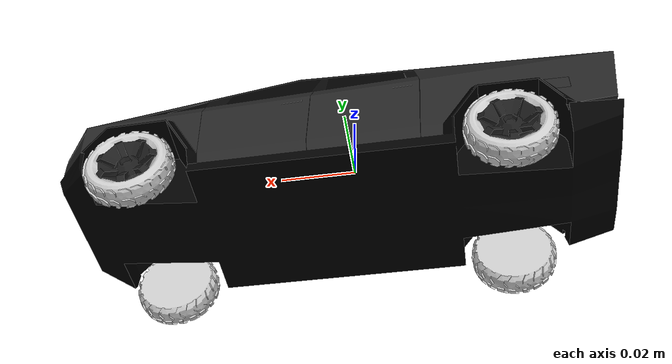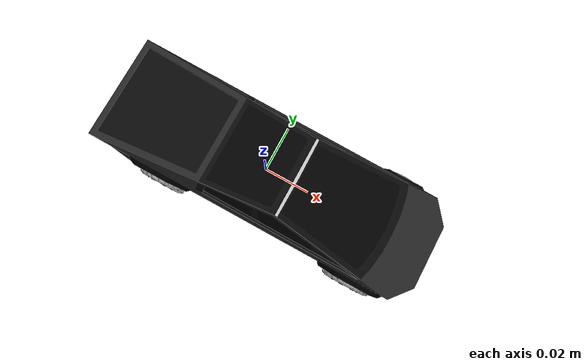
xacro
<?xml version="1.0"?>
<robot name="cybertruck" xmlns:xacro="http://ros.org/wiki/xacro">

    <!-- Includes -->
    <xacro:include filename="$(find description)/urdf/constants.xacro"/>
    <xacro:include filename="$(find description)/urdf/inertias.xacro"/>
    <xacro:include filename="$(find description)/urdf/plugins.gazebo.xacro"/>

    <link name="base_link"/>

    <!-- Body -->
    <!-- NOTE: cybertuck uses a frame where "-y" is forward for the model. base_link -> body_link will correct for this -->
    <link name="body_link">
        <visual>
            <origin xyz="0 0 0" rpy="0 0 0"/>
            <geometry>
                <mesh filename="package://description/urdf/meshes/cybertruck_body.dae"/>
            </geometry>
        </visual>

        <collision>
            <origin xyz="0 0 0" rpy="0 0 0"/>
            <geometry>
                <mesh filename="package://description/urdf/meshes/cybertruck_body.dae"/>
            </geometry>
        </collision>

        <inertial>
            <xacro:body_inertial m="${body_mass}" l="${body_length}" w="${body_width}" h="${body_height}"/>
        </inertial>
    </link>

    <joint name="body_joint" type="fixed">
        <parent link="base_link"/>
        <child link="body_link"/>
        <origin xyz="0 0 0.0" rpy="0 0 ${pi / 2}"/>
    </joint>

    <!-- Wheels -->
    <xacro:include filename="$(find description)/urdf/wheels.urdf.xacro"/>

    <!-- IR Sensor -->
    <link name="base_ir_link"/>

    <joint name="base_ir_joint" type="fixed">
        <parent link="body_link"/>
        <child link="base_ir_link"/>
        <origin xyz="0 ${front_wheel} ${-height_to_wheel}" rpy="0 0 ${-pi / 2}"/>
    </joint>

    <!-- Illuminance Sensor -->
    <link name="light_link"/>

    <joint name="light_joint" type="fixed">
        <parent link="body_link"/>
        <child link="light_link"/>
        <origin xyz="0 ${-body_length} 0" rpy="0 ${pi / 2} ${pi / 2}"/>
    </joint>

    <link name="light_link_optical"/>

    <joint name="light_optical_joint" type="fixed">
        <parent link="light_link"/>
        <child link="light_link_optical"/>
        <origin xyz="0 0 0" rpy="${-pi/2} 0 ${-pi/2}"/>
    </joint>

</robot>

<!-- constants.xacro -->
<robot name="constants" xmlns:xacro="http://ros.org/wiki/xacro">

    <!-- Body properties -->
    <xacro:property name="body_mass" value="2.5"/>
    <xacro:property name="body_length" value="0.14"/>
    <xacro:property name="body_width" value="0.05"/>
    <xacro:property name="body_height" value="0.04"/>

    <!-- Wheels properties -->
    <xacro:property name="wheel_mass" value="0.05"/>
    <xacro:property name="wheel_radius" value="0.01"/>
    <xacro:property name="wheel_width" value="0.006"/>
    <xacro:property name="wheel_separation" value="0.047"/>

    <!-- Distances from Body to Wheels -->
    <xacro:property name="front_wheel" value="-0.053"/>
    <xacro:property name="back_wheel" value="0.04"/>
    <xacro:property name="right_wheel" value="-${wheel_separation/2}"/>
    <xacro:property name="left_wheel" value="${wheel_separation/2}"/>
    <xacro:property name="height_to_wheel" value="-0.015"/>

</robot>

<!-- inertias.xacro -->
<robot name="inertias" xmlns:xacro="http://ros.org/wiki/xacro">

    <!-- Body -->
    <!-- NOTE: approximate as a box with "-y" as forward -->
    <xacro:macro name="body_inertial" params="m l w h">
        <mass value="${m}"/>
        <inertia
            ixx="${m*(h*h + l*l)/12}" ixy="0" ixz="0"
            iyy="${m*(w*w + h*h)/12}" iyz="0"
            izz="${m*(w*w + l*l)/12}"
        />
    </xacro:macro>

    <!-- Wheel -->
    <!-- NOTE: wheels are radially symmetric around the x-axis -->
    <xacro:macro name="wheel_inertial" params="m r h">
        <mass value="${m}"/>
        <inertia
            ixx="${m*r*r/2}" ixy="0" ixz="0"
            iyy="${m*(3*r*r + h*h)/12}" iyz="0"
            izz="${m*(3*r*r + h*h)/12}"
        />
    </xacro:macro>

</robot>

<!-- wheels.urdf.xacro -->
<robot name="cybertruck_wheels" xmlns:xacro="http://ros.org/wiki/xacro">

    <!-- Includes -->
    <xacro:include filename="$(find description)/urdf/constants.xacro"/>
    <xacro:include filename="$(find description)/urdf/inertias.xacro"/>

    <!-- Motor Transmissions -->
    <xacro:macro name="Transmission" params="joint">
        <transmission name="${joint}_trans">
            <type>transmission_interface/SimpleTransmission</type>

            <joint name="${joint}">
                <hardwareInterface>hardware_interface/EffortJointInterface</hardwareInterface>
            </joint>

            <actuator name="${joint}_motor"/>
        </transmission>
    </xacro:macro>

    <!-- Wheel macro -->
    <xacro:macro name="Wheel" params="fb lr">
        <!-- Wheel link -->
        <link name="${fb}_${lr}_wheel_link">
            <visual>
                <origin xyz="0 0 0" rpy="0 0 0"/>
                <geometry>
                    <mesh filename="package://description/urdf/meshes/cybertruck_${lr}_wheel.dae"/>
                </geometry>
            </visual>

            <collision>
                <origin xyz="0 0 0" rpy="0 ${pi/2} 0"/>
                <geometry>
                    <cylinder radius="${wheel_radius}" length="${wheel_width}"/>
                </geometry>
            </collision>

            <inertial>
                <xacro:wheel_inertial m="${wheel_mass}" r="${wheel_radius}" h="${wheel_width}"/>
            </inertial>
        </link>

        <!-- Wheel joint -->
        <joint name="${fb}_${lr}_wheel_joint" type="continuous">
            <parent link="body_link"/>
            <child link="${fb}_${lr}_wheel_link"/>
            <origin xyz="${left_wheel if lr == 'left' else right_wheel} ${front_wheel if fb == 'front' else back_wheel} ${height_to_wheel}" rpy="0 0 0"/>
            <axis xyz="1 0 0"/>
        </joint>

        <!-- Other attributes-->
        <xacro:if value="${fb == 'front'}">
            <!-- Add Transmission to Wheels connected to the motor -->
            <xacro:Transmission joint="${fb}_${lr}_wheel_joint"/>
        </xacro:if>
        <xacro:if value="${fb == 'back'}">
            <!-- Other Wheels serve for balance only, remove friction to enable turning -->
            <gazebo reference ="${fb}_${lr}_wheel_link">
                <mu1 value="0.0"/>
                <mu2 value="0.0"/>
            </gazebo>
        </xacro:if>
    </xacro:macro>

    <!-- Instantiate wheels -->
    <xacro:Wheel fb="front" lr="left"/>
    <xacro:Wheel fb="front" lr="right"/>

    <xacro:Wheel fb="back" lr="left"/>
    <xacro:Wheel fb="back" lr="right"/>

</robot>
